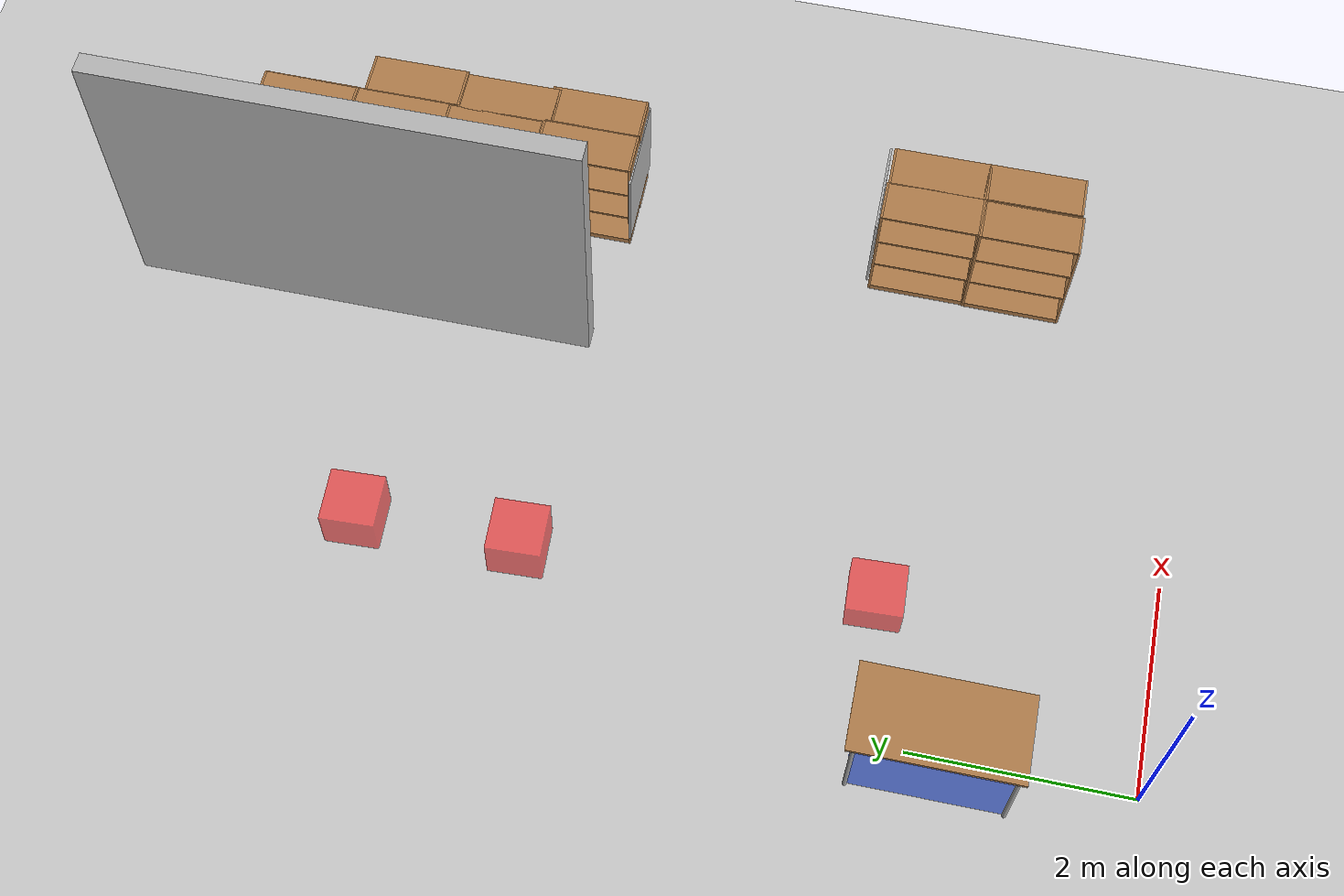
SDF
<sdf version="1.7">
 <world name="library_world">
  <model name="ground_plane">
   <static>1</static>
   <link name="link">
    <collision name="collision">
     <geometry><plane><normal>0 0 1</normal><size>100 100</size></plane></geometry>
     <surface>
      <contact><collide_bitmask>65535</collide_bitmask></contact>
      <friction><ode><mu>100</mu><mu2>50</mu2></ode></friction>
     </surface>
    </collision>
    <visual name="visual">
     <cast_shadows>0</cast_shadows>
     <geometry><plane><normal>0 0 1</normal><size>100 100</size></plane></geometry>
     <material>
      <script><uri>file://media/materials/scripts/gazebo.material</uri><name>Gazebo/Grey</name></script>
     </material>
    </visual>
   </link>
  </model>
  <model name="bookshelf_0_clone_8_clone_14">
   <static>1</static>
   <link name="link">
    <inertial><mass>1</mass></inertial>
    <collision name="back">
     <pose>0 0.005 0.6 0 -0 0</pose>
     <geometry><box><size>0.9 0.01 1.2</size></box></geometry>
    </collision>
    <visual name="visual1">
     <pose>0 0.005 0.6 0 -0 0</pose>
     <geometry><box><size>0.9 0.01 1.2</size></box></geometry>
     <material>
      <script><uri>file://media/materials/scripts/gazebo.material</uri><name>Gazebo/Wood</name></script>
     </material>
    </visual>
    <collision name="left_side">
     <pose>0.45 -0.195 0.6 0 -0 0</pose>
     <geometry><box><size>0.02 0.4 1.2</size></box></geometry>
    </collision>
    <visual name="visual2">
     <pose>0.45 -0.195 0.6 0 -0 0</pose>
     <geometry><box><size>0.02 0.4 1.2</size></box></geometry>
     <material>
      <script><uri>file://media/materials/scripts/gazebo.material</uri><name>Gazebo/Wood</name></script>
     </material>
    </visual>
    <collision name="right_side">
     <pose>-0.45 -0.195 0.6 0 -0 0</pose>
     <geometry><box><size>0.02 0.4 1.2</size></box></geometry>
    </collision>
    <visual name="visual3">
     <pose>-0.45 -0.195 0.6 0 -0 0</pose>
     <geometry><box><size>0.02 0.4 1.2</size></box></geometry>
     <material>
      <script><uri>file://media/materials/scripts/gazebo.material</uri><name>Gazebo/Wood</name></script>
     </material>
    </visual>
    <collision name="bottom">
     <pose>0 -0.195 0.03 0 -0 0</pose>
     <geometry><box><size>0.88 0.4 0.06</size></box></geometry>
    </collision>
    <visual name="visual4">
     <pose>0 -0.195 0.03 0 -0 0</pose>
     <geometry><box><size>0.88 0.4 0.06</size></box></geometry>
     <material>
      <script><uri>file://media/materials/scripts/gazebo.material</uri><name>Gazebo/Wood</name></script>
     </material>
    </visual>
    <collision name="top">
     <pose>0 -0.195 1.19 0 -0 0</pose>
     <geometry><box><size>0.88 0.4 0.02</size></box></geometry>
    </collision>
    <visual name="visual5">
     <pose>0 -0.195 1.19 0 -0 0</pose>
     <geometry><box><size>0.88 0.4 0.02</size></box></geometry>
     <material>
      <script><uri>file://media/materials/scripts/gazebo.material</uri><name>Gazebo/Wood</name></script>
     </material>
    </visual>
    <collision name="low_shelf">
     <pose>0 -0.195 0.43 0 -0 0</pose>
     <geometry><box><size>0.88 0.4 0.02</size></box></geometry>
    </collision>
    <visual name="visual6">
     <pose>0 -0.195 0.43 0 -0 0</pose>
     <geometry><box><size>0.88 0.4 0.02</size></box></geometry>
     <material>
      <script><uri>file://media/materials/scripts/gazebo.material</uri><name>Gazebo/Wood</name></script>
     </material>
    </visual>
    <collision name="high_shelf">
     <pose>0 -0.195 0.8 0 -0 0</pose>
     <geometry><box><size>0.88 0.4 0.02</size></box></geometry>
    </collision>
    <visual name="visual7">
     <pose>0 -0.195 0.8 0 -0 0</pose>
     <geometry><box><size>0.88 0.4 0.02</size></box></geometry>
     <material>
      <script><uri>file://media/materials/scripts/gazebo.material</uri><name>Gazebo/Wood</name></script>
     </material>
    </visual>
   </link>
   <pose>5.00395 8.56957 0 0 0 -1.57537</pose>
  </model>
  <model name="bookshelf_0_clone_8_clone_15">
   <static>1</static>
   <link name="link">
    <inertial><mass>1</mass></inertial>
    <collision name="back">
     <pose>0 0.005 0.6 0 -0 0</pose>
     <geometry><box><size>0.9 0.01 1.2</size></box></geometry>
    </collision>
    <visual name="visual1">
     <pose>0 0.005 0.6 0 -0 0</pose>
     <geometry><box><size>0.9 0.01 1.2</size></box></geometry>
     <material>
      <script><uri>file://media/materials/scripts/gazebo.material</uri><name>Gazebo/Wood</name></script>
     </material>
    </visual>
    <collision name="left_side">
     <pose>0.45 -0.195 0.6 0 -0 0</pose>
     <geometry><box><size>0.02 0.4 1.2</size></box></geometry>
    </collision>
    <visual name="visual2">
     <pose>0.45 -0.195 0.6 0 -0 0</pose>
     <geometry><box><size>0.02 0.4 1.2</size></box></geometry>
     <material>
      <script><uri>file://media/materials/scripts/gazebo.material</uri><name>Gazebo/Wood</name></script>
     </material>
    </visual>
    <collision name="right_side">
     <pose>-0.45 -0.195 0.6 0 -0 0</pose>
     <geometry><box><size>0.02 0.4 1.2</size></box></geometry>
    </collision>
    <visual name="visual3">
     <pose>-0.45 -0.195 0.6 0 -0 0</pose>
     <geometry><box><size>0.02 0.4 1.2</size></box></geometry>
     <material>
      <script><uri>file://media/materials/scripts/gazebo.material</uri><name>Gazebo/Wood</name></script>
     </material>
    </visual>
    <collision name="bottom">
     <pose>0 -0.195 0.03 0 -0 0</pose>
     <geometry><box><size>0.88 0.4 0.06</size></box></geometry>
    </collision>
    <visual name="visual4">
     <pose>0 -0.195 0.03 0 -0 0</pose>
     <geometry><box><size>0.88 0.4 0.06</size></box></geometry>
     <material>
      <script><uri>file://media/materials/scripts/gazebo.material</uri><name>Gazebo/Wood</name></script>
     </material>
    </visual>
    <collision name="top">
     <pose>0 -0.195 1.19 0 -0 0</pose>
     <geometry><box><size>0.88 0.4 0.02</size></box></geometry>
    </collision>
    <visual name="visual5">
     <pose>0 -0.195 1.19 0 -0 0</pose>
     <geometry><box><size>0.88 0.4 0.02</size></box></geometry>
     <material>
      <script><uri>file://media/materials/scripts/gazebo.material</uri><name>Gazebo/Wood</name></script>
     </material>
    </visual>
    <collision name="low_shelf">
     <pose>0 -0.195 0.43 0 -0 0</pose>
     <geometry><box><size>0.88 0.4 0.02</size></box></geometry>
    </collision>
    <visual name="visual6">
     <pose>0 -0.195 0.43 0 -0 0</pose>
     <geometry><box><size>0.88 0.4 0.02</size></box></geometry>
     <material>
      <script><uri>file://media/materials/scripts/gazebo.material</uri><name>Gazebo/Wood</name></script>
     </material>
    </visual>
    <collision name="high_shelf">
     <pose>0 -0.195 0.8 0 -0 0</pose>
     <geometry><box><size>0.88 0.4 0.02</size></box></geometry>
    </collision>
    <visual name="visual7">
     <pose>0 -0.195 0.8 0 -0 0</pose>
     <geometry><box><size>0.88 0.4 0.02</size></box></geometry>
     <material>
      <script><uri>file://media/materials/scripts/gazebo.material</uri><name>Gazebo/Wood</name></script>
     </material>
    </visual>
   </link>
   <pose>4.99735 7.65848 0 0 0 -1.57537</pose>
  </model>
  <model name="bookshelf_0_clone_8_clone_16">
   <static>1</static>
   <link name="link">
    <inertial><mass>1</mass></inertial>
    <collision name="back">
     <pose>0 0.005 0.6 0 -0 0</pose>
     <geometry><box><size>0.9 0.01 1.2</size></box></geometry>
    </collision>
    <visual name="visual1">
     <pose>0 0.005 0.6 0 -0 0</pose>
     <geometry><box><size>0.9 0.01 1.2</size></box></geometry>
     <material>
      <script><uri>file://media/materials/scripts/gazebo.material</uri><name>Gazebo/Wood</name></script>
     </material>
    </visual>
    <collision name="left_side">
     <pose>0.45 -0.195 0.6 0 -0 0</pose>
     <geometry><box><size>0.02 0.4 1.2</size></box></geometry>
    </collision>
    <visual name="visual2">
     <pose>0.45 -0.195 0.6 0 -0 0</pose>
     <geometry><box><size>0.02 0.4 1.2</size></box></geometry>
     <material>
      <script><uri>file://media/materials/scripts/gazebo.material</uri><name>Gazebo/Wood</name></script>
     </material>
    </visual>
    <collision name="right_side">
     <pose>-0.45 -0.195 0.6 0 -0 0</pose>
     <geometry><box><size>0.02 0.4 1.2</size></box></geometry>
    </collision>
    <visual name="visual3">
     <pose>-0.45 -0.195 0.6 0 -0 0</pose>
     <geometry><box><size>0.02 0.4 1.2</size></box></geometry>
     <material>
      <script><uri>file://media/materials/scripts/gazebo.material</uri><name>Gazebo/Wood</name></script>
     </material>
    </visual>
    <collision name="bottom">
     <pose>0 -0.195 0.03 0 -0 0</pose>
     <geometry><box><size>0.88 0.4 0.06</size></box></geometry>
    </collision>
    <visual name="visual4">
     <pose>0 -0.195 0.03 0 -0 0</pose>
     <geometry><box><size>0.88 0.4 0.06</size></box></geometry>
     <material>
      <script><uri>file://media/materials/scripts/gazebo.material</uri><name>Gazebo/Wood</name></script>
     </material>
    </visual>
    <collision name="top">
     <pose>0 -0.195 1.19 0 -0 0</pose>
     <geometry><box><size>0.88 0.4 0.02</size></box></geometry>
    </collision>
    <visual name="visual5">
     <pose>0 -0.195 1.19 0 -0 0</pose>
     <geometry><box><size>0.88 0.4 0.02</size></box></geometry>
     <material>
      <script><uri>file://media/materials/scripts/gazebo.material</uri><name>Gazebo/Wood</name></script>
     </material>
    </visual>
    <collision name="low_shelf">
     <pose>0 -0.195 0.43 0 -0 0</pose>
     <geometry><box><size>0.88 0.4 0.02</size></box></geometry>
    </collision>
    <visual name="visual6">
     <pose>0 -0.195 0.43 0 -0 0</pose>
     <geometry><box><size>0.88 0.4 0.02</size></box></geometry>
     <material>
      <script><uri>file://media/materials/scripts/gazebo.material</uri><name>Gazebo/Wood</name></script>
     </material>
    </visual>
    <collision name="high_shelf">
     <pose>0 -0.195 0.8 0 -0 0</pose>
     <geometry><box><size>0.88 0.4 0.02</size></box></geometry>
    </collision>
    <visual name="visual7">
     <pose>0 -0.195 0.8 0 -0 0</pose>
     <geometry><box><size>0.88 0.4 0.02</size></box></geometry>
     <material>
      <script><uri>file://media/materials/scripts/gazebo.material</uri><name>Gazebo/Wood</name></script>
     </material>
    </visual>
   </link>
   <pose>4.98552 6.75734 0 0 0 -1.57537</pose>
  </model>
  <model name="bookshelf_0_clone_8_clone_17">
   <static>1</static>
   <link name="link">
    <inertial><mass>1</mass></inertial>
    <collision name="back">
     <pose>0 0.005 0.6 0 -0 0</pose>
     <geometry><box><size>0.9 0.01 1.2</size></box></geometry>
    </collision>
    <visual name="visual1">
     <pose>0 0.005 0.6 0 -0 0</pose>
     <geometry><box><size>0.9 0.01 1.2</size></box></geometry>
     <material>
      <script><uri>file://media/materials/scripts/gazebo.material</uri><name>Gazebo/Wood</name></script>
     </material>
    </visual>
    <collision name="left_side">
     <pose>0.45 -0.195 0.6 0 -0 0</pose>
     <geometry><box><size>0.02 0.4 1.2</size></box></geometry>
    </collision>
    <visual name="visual2">
     <pose>0.45 -0.195 0.6 0 -0 0</pose>
     <geometry><box><size>0.02 0.4 1.2</size></box></geometry>
     <material>
      <script><uri>file://media/materials/scripts/gazebo.material</uri><name>Gazebo/Wood</name></script>
     </material>
    </visual>
    <collision name="right_side">
     <pose>-0.45 -0.195 0.6 0 -0 0</pose>
     <geometry><box><size>0.02 0.4 1.2</size></box></geometry>
    </collision>
    <visual name="visual3">
     <pose>-0.45 -0.195 0.6 0 -0 0</pose>
     <geometry><box><size>0.02 0.4 1.2</size></box></geometry>
     <material>
      <script><uri>file://media/materials/scripts/gazebo.material</uri><name>Gazebo/Wood</name></script>
     </material>
    </visual>
    <collision name="bottom">
     <pose>0 -0.195 0.03 0 -0 0</pose>
     <geometry><box><size>0.88 0.4 0.06</size></box></geometry>
    </collision>
    <visual name="visual4">
     <pose>0 -0.195 0.03 0 -0 0</pose>
     <geometry><box><size>0.88 0.4 0.06</size></box></geometry>
     <material>
      <script><uri>file://media/materials/scripts/gazebo.material</uri><name>Gazebo/Wood</name></script>
     </material>
    </visual>
    <collision name="top">
     <pose>0 -0.195 1.19 0 -0 0</pose>
     <geometry><box><size>0.88 0.4 0.02</size></box></geometry>
    </collision>
    <visual name="visual5">
     <pose>0 -0.195 1.19 0 -0 0</pose>
     <geometry><box><size>0.88 0.4 0.02</size></box></geometry>
     <material>
      <script><uri>file://media/materials/scripts/gazebo.material</uri><name>Gazebo/Wood</name></script>
     </material>
    </visual>
    <collision name="low_shelf">
     <pose>0 -0.195 0.43 0 -0 0</pose>
     <geometry><box><size>0.88 0.4 0.02</size></box></geometry>
    </collision>
    <visual name="visual6">
     <pose>0 -0.195 0.43 0 -0 0</pose>
     <geometry><box><size>0.88 0.4 0.02</size></box></geometry>
     <material>
      <script><uri>file://media/materials/scripts/gazebo.material</uri><name>Gazebo/Wood</name></script>
     </material>
    </visual>
    <collision name="high_shelf">
     <pose>0 -0.195 0.8 0 -0 0</pose>
     <geometry><box><size>0.88 0.4 0.02</size></box></geometry>
    </collision>
    <visual name="visual7">
     <pose>0 -0.195 0.8 0 -0 0</pose>
     <geometry><box><size>0.88 0.4 0.02</size></box></geometry>
     <material>
      <script><uri>file://media/materials/scripts/gazebo.material</uri><name>Gazebo/Wood</name></script>
     </material>
    </visual>
   </link>
   <pose>4.99636 5.84577 0 0 0 -1.57537</pose>
  </model>
  <model name="bookshelf_0_clone_2_clone_10">
   <static>1</static>
   <link name="link">
    <inertial><mass>1</mass></inertial>
    <collision name="back">
     <pose>0 0.005 0.6 0 -0 0</pose>
     <geometry><box><size>0.9 0.01 1.2</size></box></geometry>
    </collision>
    <visual name="visual1">
     <pose>0 0.005 0.6 0 -0 0</pose>
     <geometry><box><size>0.9 0.01 1.2</size></box></geometry>
     <material>
      <script><uri>file://media/materials/scripts/gazebo.material</uri><name>Gazebo/Wood</name></script>
     </material>
    </visual>
    <collision name="left_side">
     <pose>0.45 -0.195 0.6 0 -0 0</pose>
     <geometry><box><size>0.02 0.4 1.2</size></box></geometry>
    </collision>
    <visual name="visual2">
     <pose>0.45 -0.195 0.6 0 -0 0</pose>
     <geometry><box><size>0.02 0.4 1.2</size></box></geometry>
     <material>
      <script><uri>file://media/materials/scripts/gazebo.material</uri><name>Gazebo/Wood</name></script>
     </material>
    </visual>
    <collision name="right_side">
     <pose>-0.45 -0.195 0.6 0 -0 0</pose>
     <geometry><box><size>0.02 0.4 1.2</size></box></geometry>
    </collision>
    <visual name="visual3">
     <pose>-0.45 -0.195 0.6 0 -0 0</pose>
     <geometry><box><size>0.02 0.4 1.2</size></box></geometry>
     <material>
      <script><uri>file://media/materials/scripts/gazebo.material</uri><name>Gazebo/Wood</name></script>
     </material>
    </visual>
    <collision name="bottom">
     <pose>0 -0.195 0.03 0 -0 0</pose>
     <geometry><box><size>0.88 0.4 0.06</size></box></geometry>
    </collision>
    <visual name="visual4">
     <pose>0 -0.195 0.03 0 -0 0</pose>
     <geometry><box><size>0.88 0.4 0.06</size></box></geometry>
     <material>
      <script><uri>file://media/materials/scripts/gazebo.material</uri><name>Gazebo/Wood</name></script>
     </material>
    </visual>
    <collision name="top">
     <pose>0 -0.195 1.19 0 -0 0</pose>
     <geometry><box><size>0.88 0.4 0.02</size></box></geometry>
    </collision>
    <visual name="visual5">
     <pose>0 -0.195 1.19 0 -0 0</pose>
     <geometry><box><size>0.88 0.4 0.02</size></box></geometry>
     <material>
      <script><uri>file://media/materials/scripts/gazebo.material</uri><name>Gazebo/Wood</name></script>
     </material>
    </visual>
    <collision name="low_shelf">
     <pose>0 -0.195 0.43 0 -0 0</pose>
     <geometry><box><size>0.88 0.4 0.02</size></box></geometry>
    </collision>
    <visual name="visual6">
     <pose>0 -0.195 0.43 0 -0 0</pose>
     <geometry><box><size>0.88 0.4 0.02</size></box></geometry>
     <material>
      <script><uri>file://media/materials/scripts/gazebo.material</uri><name>Gazebo/Wood</name></script>
     </material>
    </visual>
    <collision name="high_shelf">
     <pose>0 -0.195 0.8 0 -0 0</pose>
     <geometry><box><size>0.88 0.4 0.02</size></box></geometry>
    </collision>
    <visual name="visual7">
     <pose>0 -0.195 0.8 0 -0 0</pose>
     <geometry><box><size>0.88 0.4 0.02</size></box></geometry>
     <material>
      <script><uri>file://media/materials/scripts/gazebo.material</uri><name>Gazebo/Wood</name></script>
     </material>
    </visual>
   </link>
   <pose>5.01189 7.58746 0 0 -0 1.57381</pose>
  </model>
  <model name="bookshelf_0_clone_2_clone_11">
   <static>1</static>
   <link name="link">
    <inertial><mass>1</mass></inertial>
    <collision name="back">
     <pose>0 0.005 0.6 0 -0 0</pose>
     <geometry><box><size>0.9 0.01 1.2</size></box></geometry>
    </collision>
    <visual name="visual1">
     <pose>0 0.005 0.6 0 -0 0</pose>
     <geometry><box><size>0.9 0.01 1.2</size></box></geometry>
     <material>
      <script><uri>file://media/materials/scripts/gazebo.material</uri><name>Gazebo/Wood</name></script>
     </material>
    </visual>
    <collision name="left_side">
     <pose>0.45 -0.195 0.6 0 -0 0</pose>
     <geometry><box><size>0.02 0.4 1.2</size></box></geometry>
    </collision>
    <visual name="visual2">
     <pose>0.45 -0.195 0.6 0 -0 0</pose>
     <geometry><box><size>0.02 0.4 1.2</size></box></geometry>
     <material>
      <script><uri>file://media/materials/scripts/gazebo.material</uri><name>Gazebo/Wood</name></script>
     </material>
    </visual>
    <collision name="right_side">
     <pose>-0.45 -0.195 0.6 0 -0 0</pose>
     <geometry><box><size>0.02 0.4 1.2</size></box></geometry>
    </collision>
    <visual name="visual3">
     <pose>-0.45 -0.195 0.6 0 -0 0</pose>
     <geometry><box><size>0.02 0.4 1.2</size></box></geometry>
     <material>
      <script><uri>file://media/materials/scripts/gazebo.material</uri><name>Gazebo/Wood</name></script>
     </material>
    </visual>
    <collision name="bottom">
     <pose>0 -0.195 0.03 0 -0 0</pose>
     <geometry><box><size>0.88 0.4 0.06</size></box></geometry>
    </collision>
    <visual name="visual4">
     <pose>0 -0.195 0.03 0 -0 0</pose>
     <geometry><box><size>0.88 0.4 0.06</size></box></geometry>
     <material>
      <script><uri>file://media/materials/scripts/gazebo.material</uri><name>Gazebo/Wood</name></script>
     </material>
    </visual>
    <collision name="top">
     <pose>0 -0.195 1.19 0 -0 0</pose>
     <geometry><box><size>0.88 0.4 0.02</size></box></geometry>
    </collision>
    <visual name="visual5">
     <pose>0 -0.195 1.19 0 -0 0</pose>
     <geometry><box><size>0.88 0.4 0.02</size></box></geometry>
     <material>
      <script><uri>file://media/materials/scripts/gazebo.material</uri><name>Gazebo/Wood</name></script>
     </material>
    </visual>
    <collision name="low_shelf">
     <pose>0 -0.195 0.43 0 -0 0</pose>
     <geometry><box><size>0.88 0.4 0.02</size></box></geometry>
    </collision>
    <visual name="visual6">
     <pose>0 -0.195 0.43 0 -0 0</pose>
     <geometry><box><size>0.88 0.4 0.02</size></box></geometry>
     <material>
      <script><uri>file://media/materials/scripts/gazebo.material</uri><name>Gazebo/Wood</name></script>
     </material>
    </visual>
    <collision name="high_shelf">
     <pose>0 -0.195 0.8 0 -0 0</pose>
     <geometry><box><size>0.88 0.4 0.02</size></box></geometry>
    </collision>
    <visual name="visual7">
     <pose>0 -0.195 0.8 0 -0 0</pose>
     <geometry><box><size>0.88 0.4 0.02</size></box></geometry>
     <material>
      <script><uri>file://media/materials/scripts/gazebo.material</uri><name>Gazebo/Wood</name></script>
     </material>
    </visual>
   </link>
   <pose>4.98632 6.6777 0 0 -0 1.57381</pose>
  </model>
  <model name="bookshelf_0_clone_2_clone_12">
   <static>1</static>
   <link name="link">
    <inertial><mass>1</mass></inertial>
    <collision name="back">
     <pose>0 0.005 0.6 0 -0 0</pose>
     <geometry><box><size>0.9 0.01 1.2</size></box></geometry>
    </collision>
    <visual name="visual1">
     <pose>0 0.005 0.6 0 -0 0</pose>
     <geometry><box><size>0.9 0.01 1.2</size></box></geometry>
     <material>
      <script><uri>file://media/materials/scripts/gazebo.material</uri><name>Gazebo/Wood</name></script>
     </material>
    </visual>
    <collision name="left_side">
     <pose>0.45 -0.195 0.6 0 -0 0</pose>
     <geometry><box><size>0.02 0.4 1.2</size></box></geometry>
    </collision>
    <visual name="visual2">
     <pose>0.45 -0.195 0.6 0 -0 0</pose>
     <geometry><box><size>0.02 0.4 1.2</size></box></geometry>
     <material>
      <script><uri>file://media/materials/scripts/gazebo.material</uri><name>Gazebo/Wood</name></script>
     </material>
    </visual>
    <collision name="right_side">
     <pose>-0.45 -0.195 0.6 0 -0 0</pose>
     <geometry><box><size>0.02 0.4 1.2</size></box></geometry>
    </collision>
    <visual name="visual3">
     <pose>-0.45 -0.195 0.6 0 -0 0</pose>
     <geometry><box><size>0.02 0.4 1.2</size></box></geometry>
     <material>
      <script><uri>file://media/materials/scripts/gazebo.material</uri><name>Gazebo/Wood</name></script>
     </material>
    </visual>
    <collision name="bottom">
     <pose>0 -0.195 0.03 0 -0 0</pose>
     <geometry><box><size>0.88 0.4 0.06</size></box></geometry>
    </collision>
    <visual name="visual4">
     <pose>0 -0.195 0.03 0 -0 0</pose>
     <geometry><box><size>0.88 0.4 0.06</size></box></geometry>
     <material>
      <script><uri>file://media/materials/scripts/gazebo.material</uri><name>Gazebo/Wood</name></script>
     </material>
    </visual>
    <collision name="top">
     <pose>0 -0.195 1.19 0 -0 0</pose>
     <geometry><box><size>0.88 0.4 0.02</size></box></geometry>
    </collision>
    <visual name="visual5">
     <pose>0 -0.195 1.19 0 -0 0</pose>
     <geometry><box><size>0.88 0.4 0.02</size></box></geometry>
     <material>
      <script><uri>file://media/materials/scripts/gazebo.material</uri><name>Gazebo/Wood</name></script>
     </material>
    </visual>
    <collision name="low_shelf">
     <pose>0 -0.195 0.43 0 -0 0</pose>
     <geometry><box><size>0.88 0.4 0.02</size></box></geometry>
    </collision>
    <visual name="visual6">
     <pose>0 -0.195 0.43 0 -0 0</pose>
     <geometry><box><size>0.88 0.4 0.02</size></box></geometry>
     <material>
      <script><uri>file://media/materials/scripts/gazebo.material</uri><name>Gazebo/Wood</name></script>
     </material>
    </visual>
    <collision name="high_shelf">
     <pose>0 -0.195 0.8 0 -0 0</pose>
     <geometry><box><size>0.88 0.4 0.02</size></box></geometry>
    </collision>
    <visual name="visual7">
     <pose>0 -0.195 0.8 0 -0 0</pose>
     <geometry><box><size>0.88 0.4 0.02</size></box></geometry>
     <material>
      <script><uri>file://media/materials/scripts/gazebo.material</uri><name>Gazebo/Wood</name></script>
     </material>
    </visual>
   </link>
   <pose>5.0161 5.84184 0 0 -0 1.57381</pose>
  </model>
  <model name="bookshelf_0_clone_2_clone_29">
   <static>1</static>
   <link name="link">
    <inertial><mass>1</mass></inertial>
    <collision name="back">
     <pose>0 0.005 0.6 0 -0 0</pose>
     <geometry><box><size>0.9 0.01 1.2</size></box></geometry>
    </collision>
    <visual name="visual1">
     <pose>0 0.005 0.6 0 -0 0</pose>
     <geometry><box><size>0.9 0.01 1.2</size></box></geometry>
     <material>
      <script><uri>file://media/materials/scripts/gazebo.material</uri><name>Gazebo/Wood</name></script>
     </material>
    </visual>
    <collision name="left_side">
     <pose>0.45 -0.195 0.6 0 -0 0</pose>
     <geometry><box><size>0.02 0.4 1.2</size></box></geometry>
    </collision>
    <visual name="visual2">
     <pose>0.45 -0.195 0.6 0 -0 0</pose>
     <geometry><box><size>0.02 0.4 1.2</size></box></geometry>
     <material>
      <script><uri>file://media/materials/scripts/gazebo.material</uri><name>Gazebo/Wood</name></script>
     </material>
    </visual>
    <collision name="right_side">
     <pose>-0.45 -0.195 0.6 0 -0 0</pose>
     <geometry><box><size>0.02 0.4 1.2</size></box></geometry>
    </collision>
    <visual name="visual3">
     <pose>-0.45 -0.195 0.6 0 -0 0</pose>
     <geometry><box><size>0.02 0.4 1.2</size></box></geometry>
     <material>
      <script><uri>file://media/materials/scripts/gazebo.material</uri><name>Gazebo/Wood</name></script>
     </material>
    </visual>
    <collision name="bottom">
     <pose>0 -0.195 0.03 0 -0 0</pose>
     <geometry><box><size>0.88 0.4 0.06</size></box></geometry>
    </collision>
    <visual name="visual4">
     <pose>0 -0.195 0.03 0 -0 0</pose>
     <geometry><box><size>0.88 0.4 0.06</size></box></geometry>
     <material>
      <script><uri>file://media/materials/scripts/gazebo.material</uri><name>Gazebo/Wood</name></script>
     </material>
    </visual>
    <collision name="top">
     <pose>0 -0.195 1.19 0 -0 0</pose>
     <geometry><box><size>0.88 0.4 0.02</size></box></geometry>
    </collision>
    <visual name="visual5">
     <pose>0 -0.195 1.19 0 -0 0</pose>
     <geometry><box><size>0.88 0.4 0.02</size></box></geometry>
     <material>
      <script><uri>file://media/materials/scripts/gazebo.material</uri><name>Gazebo/Wood</name></script>
     </material>
    </visual>
    <collision name="low_shelf">
     <pose>0 -0.195 0.43 0 -0 0</pose>
     <geometry><box><size>0.88 0.4 0.02</size></box></geometry>
    </collision>
    <visual name="visual6">
     <pose>0 -0.195 0.43 0 -0 0</pose>
     <geometry><box><size>0.88 0.4 0.02</size></box></geometry>
     <material>
      <script><uri>file://media/materials/scripts/gazebo.material</uri><name>Gazebo/Wood</name></script>
     </material>
    </visual>
    <collision name="high_shelf">
     <pose>0 -0.195 0.8 0 -0 0</pose>
     <geometry><box><size>0.88 0.4 0.02</size></box></geometry>
    </collision>
    <visual name="visual7">
     <pose>0 -0.195 0.8 0 -0 0</pose>
     <geometry><box><size>0.88 0.4 0.02</size></box></geometry>
     <material>
      <script><uri>file://media/materials/scripts/gazebo.material</uri><name>Gazebo/Wood</name></script>
     </material>
    </visual>
   </link>
   <pose>4.98298 2.57261 0 0 -0 1.57381</pose>
  </model>
  <model name="bookshelf_0_clone_2_clone_30">
   <static>1</static>
   <link name="link">
    <inertial><mass>1</mass></inertial>
    <collision name="back">
     <pose>0 0.005 0.6 0 -0 0</pose>
     <geometry><box><size>0.9 0.01 1.2</size></box></geometry>
    </collision>
    <visual name="visual1">
     <pose>0 0.005 0.6 0 -0 0</pose>
     <geometry><box><size>0.9 0.01 1.2</size></box></geometry>
     <material>
      <script><uri>file://media/materials/scripts/gazebo.material</uri><name>Gazebo/Wood</name></script>
     </material>
    </visual>
    <collision name="left_side">
     <pose>0.45 -0.195 0.6 0 -0 0</pose>
     <geometry><box><size>0.02 0.4 1.2</size></box></geometry>
    </collision>
    <visual name="visual2">
     <pose>0.45 -0.195 0.6 0 -0 0</pose>
     <geometry><box><size>0.02 0.4 1.2</size></box></geometry>
     <material>
      <script><uri>file://media/materials/scripts/gazebo.material</uri><name>Gazebo/Wood</name></script>
     </material>
    </visual>
    <collision name="right_side">
     <pose>-0.45 -0.195 0.6 0 -0 0</pose>
     <geometry><box><size>0.02 0.4 1.2</size></box></geometry>
    </collision>
    <visual name="visual3">
     <pose>-0.45 -0.195 0.6 0 -0 0</pose>
     <geometry><box><size>0.02 0.4 1.2</size></box></geometry>
     <material>
      <script><uri>file://media/materials/scripts/gazebo.material</uri><name>Gazebo/Wood</name></script>
     </material>
    </visual>
    <collision name="bottom">
     <pose>0 -0.195 0.03 0 -0 0</pose>
     <geometry><box><size>0.88 0.4 0.06</size></box></geometry>
    </collision>
    <visual name="visual4">
     <pose>0 -0.195 0.03 0 -0 0</pose>
     <geometry><box><size>0.88 0.4 0.06</size></box></geometry>
     <material>
      <script><uri>file://media/materials/scripts/gazebo.material</uri><name>Gazebo/Wood</name></script>
     </material>
    </visual>
    <collision name="top">
     <pose>0 -0.195 1.19 0 -0 0</pose>
     <geometry><box><size>0.88 0.4 0.02</size></box></geometry>
    </collision>
    <visual name="visual5">
     <pose>0 -0.195 1.19 0 -0 0</pose>
     <geometry><box><size>0.88 0.4 0.02</size></box></geometry>
     <material>
      <script><uri>file://media/materials/scripts/gazebo.material</uri><name>Gazebo/Wood</name></script>
     </material>
    </visual>
    <collision name="low_shelf">
     <pose>0 -0.195 0.43 0 -0 0</pose>
     <geometry><box><size>0.88 0.4 0.02</size></box></geometry>
    </collision>
    <visual name="visual6">
     <pose>0 -0.195 0.43 0 -0 0</pose>
     <geometry><box><size>0.88 0.4 0.02</size></box></geometry>
     <material>
      <script><uri>file://media/materials/scripts/gazebo.material</uri><name>Gazebo/Wood</name></script>
     </material>
    </visual>
    <collision name="high_shelf">
     <pose>0 -0.195 0.8 0 -0 0</pose>
     <geometry><box><size>0.88 0.4 0.02</size></box></geometry>
    </collision>
    <visual name="visual7">
     <pose>0 -0.195 0.8 0 -0 0</pose>
     <geometry><box><size>0.88 0.4 0.02</size></box></geometry>
     <material>
      <script><uri>file://media/materials/scripts/gazebo.material</uri><name>Gazebo/Wood</name></script>
     </material>
    </visual>
   </link>
   <pose>4.98765 1.69254 0 0 -0 1.57381</pose>
  </model>
  <model name="bookshelf_0_clone_8_clone_17_clone_5">
   <static>1</static>
   <link name="link">
    <inertial><mass>1</mass></inertial>
    <collision name="back">
     <pose>0 0.005 0.6 0 -0 0</pose>
     <geometry><box><size>0.9 0.01 1.2</size></box></geometry>
    </collision>
    <visual name="visual1">
     <pose>0 0.005 0.6 0 -0 0</pose>
     <geometry><box><size>0.9 0.01 1.2</size></box></geometry>
     <material>
      <script><uri>file://media/materials/scripts/gazebo.material</uri><name>Gazebo/Wood</name></script>
     </material>
    </visual>
    <collision name="left_side">
     <pose>0.45 -0.195 0.6 0 -0 0</pose>
     <geometry><box><size>0.02 0.4 1.2</size></box></geometry>
    </collision>
    <visual name="visual2">
     <pose>0.45 -0.195 0.6 0 -0 0</pose>
     <geometry><box><size>0.02 0.4 1.2</size></box></geometry>
     <material>
      <script><uri>file://media/materials/scripts/gazebo.material</uri><name>Gazebo/Wood</name></script>
     </material>
    </visual>
    <collision name="right_side">
     <pose>-0.45 -0.195 0.6 0 -0 0</pose>
     <geometry><box><size>0.02 0.4 1.2</size></box></geometry>
    </collision>
    <visual name="visual3">
     <pose>-0.45 -0.195 0.6 0 -0 0</pose>
     <geometry><box><size>0.02 0.4 1.2</size></box></geometry>
     <material>
      <script><uri>file://media/materials/scripts/gazebo.material</uri><name>Gazebo/Wood</name></script>
     </material>
    </visual>
    <collision name="bottom">
     <pose>0 -0.195 0.03 0 -0 0</pose>
     <geometry><box><size>0.88 0.4 0.06</size></box></geometry>
    </collision>
    <visual name="visual4">
     <pose>0 -0.195 0.03 0 -0 0</pose>
     <geometry><box><size>0.88 0.4 0.06</size></box></geometry>
     <material>
      <script><uri>file://media/materials/scripts/gazebo.material</uri><name>Gazebo/Wood</name></script>
     </material>
    </visual>
    <collision name="top">
     <pose>0 -0.195 1.19 0 -0 0</pose>
     <geometry><box><size>0.88 0.4 0.02</size></box></geometry>
    </collision>
    <visual name="visual5">
     <pose>0 -0.195 1.19 0 -0 0</pose>
     <geometry><box><size>0.88 0.4 0.02</size></box></geometry>
     <material>
      <script><uri>file://media/materials/scripts/gazebo.material</uri><name>Gazebo/Wood</name></script>
     </material>
    </visual>
    <collision name="low_shelf">
     <pose>0 -0.195 0.43 0 -0 0</pose>
     <geometry><box><size>0.88 0.4 0.02</size></box></geometry>
    </collision>
    <visual name="visual6">
     <pose>0 -0.195 0.43 0 -0 0</pose>
     <geometry><box><size>0.88 0.4 0.02</size></box></geometry>
     <material>
      <script><uri>file://media/materials/scripts/gazebo.material</uri><name>Gazebo/Wood</name></script>
     </material>
    </visual>
    <collision name="high_shelf">
     <pose>0 -0.195 0.8 0 -0 0</pose>
     <geometry><box><size>0.88 0.4 0.02</size></box></geometry>
    </collision>
    <visual name="visual7">
     <pose>0 -0.195 0.8 0 -0 0</pose>
     <geometry><box><size>0.88 0.4 0.02</size></box></geometry>
     <material>
      <script><uri>file://media/materials/scripts/gazebo.material</uri><name>Gazebo/Wood</name></script>
     </material>
    </visual>
   </link>
   <pose>4.97366 2.58573 0 0 0 -1.57537</pose>
  </model>
  <model name="bookshelf_0_clone_8_clone_17_clone_6">
   <static>1</static>
   <link name="link">
    <inertial><mass>1</mass></inertial>
    <collision name="back">
     <pose>0 0.005 0.6 0 -0 0</pose>
     <geometry><box><size>0.9 0.01 1.2</size></box></geometry>
    </collision>
    <visual name="visual1">
     <pose>0 0.005 0.6 0 -0 0</pose>
     <geometry><box><size>0.9 0.01 1.2</size></box></geometry>
     <material>
      <script><uri>file://media/materials/scripts/gazebo.material</uri><name>Gazebo/Wood</name></script>
     </material>
    </visual>
    <collision name="left_side">
     <pose>0.45 -0.195 0.6 0 -0 0</pose>
     <geometry><box><size>0.02 0.4 1.2</size></box></geometry>
    </collision>
    <visual name="visual2">
     <pose>0.45 -0.195 0.6 0 -0 0</pose>
     <geometry><box><size>0.02 0.4 1.2</size></box></geometry>
     <material>
      <script><uri>file://media/materials/scripts/gazebo.material</uri><name>Gazebo/Wood</name></script>
     </material>
    </visual>
    <collision name="right_side">
     <pose>-0.45 -0.195 0.6 0 -0 0</pose>
     <geometry><box><size>0.02 0.4 1.2</size></box></geometry>
    </collision>
    <visual name="visual3">
     <pose>-0.45 -0.195 0.6 0 -0 0</pose>
     <geometry><box><size>0.02 0.4 1.2</size></box></geometry>
     <material>
      <script><uri>file://media/materials/scripts/gazebo.material</uri><name>Gazebo/Wood</name></script>
     </material>
    </visual>
    <collision name="bottom">
     <pose>0 -0.195 0.03 0 -0 0</pose>
     <geometry><box><size>0.88 0.4 0.06</size></box></geometry>
    </collision>
    <visual name="visual4">
     <pose>0 -0.195 0.03 0 -0 0</pose>
     <geometry><box><size>0.88 0.4 0.06</size></box></geometry>
     <material>
      <script><uri>file://media/materials/scripts/gazebo.material</uri><name>Gazebo/Wood</name></script>
     </material>
    </visual>
    <collision name="top">
     <pose>0 -0.195 1.19 0 -0 0</pose>
     <geometry><box><size>0.88 0.4 0.02</size></box></geometry>
    </collision>
    <visual name="visual5">
     <pose>0 -0.195 1.19 0 -0 0</pose>
     <geometry><box><size>0.88 0.4 0.02</size></box></geometry>
     <material>
      <script><uri>file://media/materials/scripts/gazebo.material</uri><name>Gazebo/Wood</name></script>
     </material>
    </visual>
    <collision name="low_shelf">
     <pose>0 -0.195 0.43 0 -0 0</pose>
     <geometry><box><size>0.88 0.4 0.02</size></box></geometry>
    </collision>
    <visual name="visual6">
     <pose>0 -0.195 0.43 0 -0 0</pose>
     <geometry><box><size>0.88 0.4 0.02</size></box></geometry>
     <material>
      <script><uri>file://media/materials/scripts/gazebo.material</uri><name>Gazebo/Wood</name></script>
     </material>
    </visual>
    <collision name="high_shelf">
     <pose>0 -0.195 0.8 0 -0 0</pose>
     <geometry><box><size>0.88 0.4 0.02</size></box></geometry>
    </collision>
    <visual name="visual7">
     <pose>0 -0.195 0.8 0 -0 0</pose>
     <geometry><box><size>0.88 0.4 0.02</size></box></geometry>
     <material>
      <script><uri>file://media/materials/scripts/gazebo.material</uri><name>Gazebo/Wood</name></script>
     </material>
    </visual>
   </link>
   <pose>4.95981 1.67427 0 0 0 -1.57537</pose>
  </model>
  <model name="book_2_clone_clone_1_clone_clone_1">
   <static>1</static>
   <link name="link">
    <visual name="visual"><geometry><box><size>0.221094 0.032318 0.244099</size></box></geometry></visual>
   </link>
   <pose>4.90631 8.61649 0.179005 0 -0 0</pose>
  </model>
  <model name="book_2_clone_clone_3">
   <static>1</static>
   <link name="link">
    <visual name="visual"><geometry><box><size>0.221094 0.032318 0.244099</size></box></geometry></visual>
   </link>
   <pose>4.85551 5.91633 0.934382 0 -0 0</pose>
  </model>
  <model name="table_clone_0">
   <static>1</static>
   <link name="link">
    <collision name="surface">
     <pose>0 0 1 0 -0 0</pose>
     <geometry><box><size>1.5 0.8 0.03</size></box></geometry>
     <surface><friction><ode><mu>0.6</mu><mu2>0.6</mu2></ode></friction></surface>
    </collision>
    <visual name="visual1">
     <pose>0 0 1 0 -0 0</pose>
     <geometry><box><size>1.5 0.8 0.03</size></box></geometry>
     <material>
      <script><uri>file://media/materials/scripts/gazebo.material</uri><name>Gazebo/Wood</name></script>
     </material>
    </visual>
    <collision name="front_left_leg">
     <pose>0.68 0.38 0.5 0 -0 0</pose>
     <geometry><cylinder><radius>0.02</radius><length>1</length></cylinder></geometry>
    </collision>
    <visual name="front_left_leg">
     <pose>0.68 0.38 0.5 0 -0 0</pose>
     <geometry><cylinder><radius>0.02</radius><length>1</length></cylinder></geometry>
     <material>
      <script><uri>file://media/materials/scripts/gazebo.material</uri><name>Gazebo/Grey</name></script>
     </material>
    </visual>
    <collision name="front_right_leg">
     <pose>0.68 -0.38 0.5 0 -0 0</pose>
     <geometry><cylinder><radius>0.02</radius><length>1</length></cylinder></geometry>
    </collision>
    <visual name="front_right_leg">
     <pose>0.68 -0.38 0.5 0 -0 0</pose>
     <geometry><cylinder><radius>0.02</radius><length>1</length></cylinder></geometry>
     <material>
      <script><uri>file://media/materials/scripts/gazebo.material</uri><name>Gazebo/Grey</name></script>
     </material>
    </visual>
    <collision name="back_right_leg">
     <pose>-0.68 -0.38 0.5 0 -0 0</pose>
     <geometry><cylinder><radius>0.02</radius><length>1</length></cylinder></geometry>
    </collision>
    <visual name="back_right_leg">
     <pose>-0.68 -0.38 0.5 0 -0 0</pose>
     <geometry><cylinder><radius>0.02</radius><length>1</length></cylinder></geometry>
     <material>
      <script><uri>file://media/materials/scripts/gazebo.material</uri><name>Gazebo/Grey</name></script>
     </material>
    </visual>
    <collision name="back_left_leg">
     <pose>-0.68 0.38 0.5 0 -0 0</pose>
     <geometry><cylinder><radius>0.02</radius><length>1</length></cylinder></geometry>
    </collision>
    <visual name="back_left_leg">
     <pose>-0.68 0.38 0.5 0 -0 0</pose>
     <geometry><cylinder><radius>0.02</radius><length>1</length></cylinder></geometry>
     <material>
      <script><uri>file://media/materials/scripts/gazebo.material</uri><name>Gazebo/Grey</name></script>
     </material>
    </visual>
   </link>
   <pose>0.013318 1.77697 -0.174161 -0.000869 2e-06 -1.56857</pose>
  </model>
  <model name="wall_left_clone_clone_clone_1_clone">
   <static>1</static>
   <link name="link">
    <visual name="visual"><geometry><box><size>0.2 4.41332 3</size></box></geometry></visual>
   </link>
   <pose>3.46602 7.7294 1.5 0 -0 0</pose>
  </model>
  <model name="nav_visible_block_Chair_clone_14_clone_15">
   <static>1</static>
   <pose>1.3362 2.4698 0.078016 0 0 -3.09777</pose>
   <link name="link">
    <collision name="collision">
     <geometry><box><size>0.5 0.5 0.5</size></box></geometry>
     <surface>
      <contact><collide_bitmask>65535</collide_bitmask></contact>
      <friction><ode><mu>1</mu><mu2>1</mu2></ode></friction>
     </surface>
    </collision>
    <visual name="visual">
     <transparency>0.35</transparency>
     <geometry><box><size>0.5 0.5 0.5</size></box></geometry>
     <material><ambient>1 0.15 0.15 1</ambient><diffuse>1 0.15 0.15 1</diffuse></material>
    </visual>
   </link>
  </model>
  <model name="nav_visible_block_Chair_clone_14_clone_22">
   <static>1</static>
   <pose>1.15942 7.16927 0.199182 0 0 -3.09777</pose>
   <link name="link">
    <collision name="collision">
     <geometry><box><size>0.5 0.5 0.5</size></box></geometry>
     <surface>
      <contact><collide_bitmask>65535</collide_bitmask></contact>
      <friction><ode><mu>1</mu><mu2>1</mu2></ode></friction>
     </surface>
    </collision>
    <visual name="visual">
     <transparency>0.35</transparency>
     <geometry><box><size>0.5 0.5 0.5</size></box></geometry>
     <material><ambient>1 0.15 0.15 1</ambient><diffuse>1 0.15 0.15 1</diffuse></material>
    </visual>
   </link>
  </model>
  <model name="nav_visible_block_Chair_clone_14_clone_23">
   <static>1</static>
   <pose>1.18095 5.66476 0.211986 0 0 -3.09777</pose>
   <link name="link">
    <collision name="collision">
     <geometry><box><size>0.5 0.5 0.5</size></box></geometry>
     <surface>
      <contact><collide_bitmask>65535</collide_bitmask></contact>
      <friction><ode><mu>1</mu><mu2>1</mu2></ode></friction>
     </surface>
    </collision>
    <visual name="visual">
     <transparency>0.35</transparency>
     <geometry><box><size>0.5 0.5 0.5</size></box></geometry>
     <material><ambient>1 0.15 0.15 1</ambient><diffuse>1 0.15 0.15 1</diffuse></material>
    </visual>
   </link>
  </model>
  <model name="nav_visible_block_table_clone_3_clone_2">
   <static>1</static>
   <pose>0.017434 1.7745 0.25 0 0 -1.56857</pose>
   <link name="link">
    <collision name="collision">
     <geometry><box><size>1.36858 0.75 1.11496</size></box></geometry>
     <surface>
      <contact><collide_bitmask>65535</collide_bitmask></contact>
      <friction><ode><mu>1</mu><mu2>1</mu2></ode></friction>
     </surface>
    </collision>
    <visual name="visual">
     <transparency>0.35</transparency>
     <geometry><box><size>1.36858 0.75 1.11496</size></box></geometry>
     <material><ambient>0.1 0.3 1 1</ambient><diffuse>0.1 0.3 1 1</diffuse></material>
    </visual>
   </link>
  </model>
  <model name="qr_bookshelf_5">
   <static>1</static>
   <pose>5.00417 5.38321 0.613264 0 -0 0</pose>
   <link name="qr_bookshelf_5_link">
    <visual name="qr_bookshelf_5_visual">
     <geometry><box><size>0.9 0.02 0.9</size></box></geometry>
     <material>
      <script>
       <uri>model://qr_bookshelf_5/materials/scripts</uri>
       <uri>model://qr_bookshelf_5/materials/textures</uri>
       <name>QR/Bookshelf5</name>
      </script>
     </material>
    </visual>
   </link>
  </model>
  <model name="qr_bookshelf_7">
   <static>1</static>
   <pose>4.98262 3.06817 0.660316 0 -0 0</pose>
   <link name="qr_bookshelf_7_link">
    <visual name="qr_bookshelf_7_visual">
     <geometry><box><size>0.9 0.02 0.9</size></box></geometry>
     <material>
      <script>
       <uri>model://qr_bookshelf_7/materials/scripts</uri>
       <uri>model://qr_bookshelf_7/materials/textures</uri>
       <name>QR/Bookshelf7</name>
      </script>
     </material>
    </visual>
   </link>
  </model>
 </world>
</sdf>
